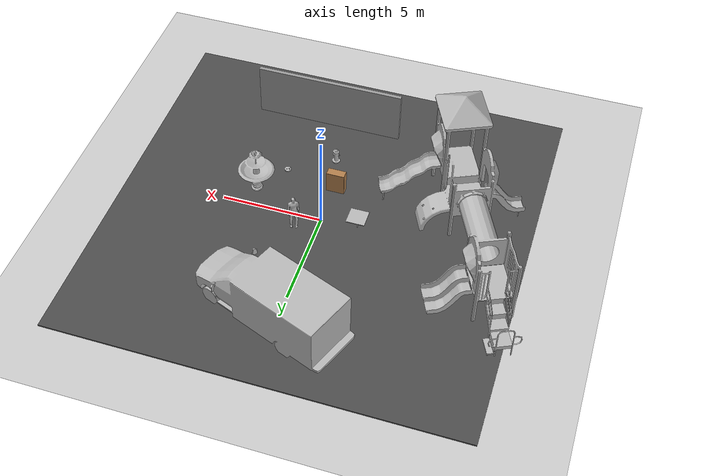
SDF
<sdf version="1.6">
 <world name="default">
  <model name="ground_plane">
   <static>1</static>
   <link name="link">
    <collision name="collision">
     <geometry><plane><normal>0 0 1</normal><size>100 100</size></plane></geometry>
     <surface>
      <contact><collide_bitmask>65535</collide_bitmask></contact>
      <friction><ode><mu>100</mu><mu2>50</mu2></ode></friction>
     </surface>
    </collision>
    <visual name="visual">
     <cast_shadows>0</cast_shadows>
     <geometry><plane><normal>0 0 1</normal><size>100 100</size></plane></geometry>
     <material>
      <script><uri>file://media/materials/scripts/gazebo.material</uri><name>Gazebo/Grey</name></script>
     </material>
    </visual>
   </link>
  </model>
  <light name="sun" type="directional">
   <pose>0 0 10 0 -0 0</pose>
   <diffuse>0.8 0.8 0.8 1</diffuse>
   <specular>0.2 0.2 0.2 1</specular>
   <attenuation>
    <range>1000</range>
    <constant>0.9</constant>
    <linear>0.01</linear>
    <quadratic>0.001</quadratic>
   </attenuation>
   <direction>-0.5 0.1 -0.9</direction>
  </light>
  <gravity>0 0 -9.8</gravity>
  <magnetic_field>6e-06 2.3e-05 -4.2e-05</magnetic_field>
  <atmosphere type="adiabatic"/>
  <physics name="default_physics" default="0" type="ode">
   <max_step_size>0.001</max_step_size>
   <real_time_factor>1</real_time_factor>
   <real_time_update_rate>1000</real_time_update_rate>
  </physics>
  <scene><ambient>0.4 0.4 0.4 1</ambient><background>0.7 0.7 0.7 1</background><shadows>1</shadows></scene>
  <audio><device>default</device></audio>
  <spherical_coordinates>
   <surface_model>EARTH_WGS84</surface_model>
   <latitude_deg>0</latitude_deg>
   <longitude_deg>0</longitude_deg>
   <elevation>0</elevation>
   <heading_deg>0</heading_deg>
  </spherical_coordinates>
  <model name="bookshelf">
   <static>1</static>
   <link name="link">
    <inertial><mass>1</mass></inertial>
    <collision name="back">
     <pose>0 0.005 0.6 0 -0 0</pose>
     <geometry><box><size>0.9 0.01 1.2</size></box></geometry>
    </collision>
    <visual name="visual1">
     <pose>0 0.005 0.6 0 -0 0</pose>
     <geometry><box><size>0.9 0.01 1.2</size></box></geometry>
     <material>
      <script><uri>file://media/materials/scripts/gazebo.material</uri><name>Gazebo/Wood</name></script>
     </material>
    </visual>
    <collision name="left_side">
     <pose>0.45 -0.195 0.6 0 -0 0</pose>
     <geometry><box><size>0.02 0.4 1.2</size></box></geometry>
    </collision>
    <visual name="visual2">
     <pose>0.45 -0.195 0.6 0 -0 0</pose>
     <geometry><box><size>0.02 0.4 1.2</size></box></geometry>
     <material>
      <script><uri>file://media/materials/scripts/gazebo.material</uri><name>Gazebo/Wood</name></script>
     </material>
    </visual>
    <collision name="right_side">
     <pose>-0.45 -0.195 0.6 0 -0 0</pose>
     <geometry><box><size>0.02 0.4 1.2</size></box></geometry>
    </collision>
    <visual name="visual3">
     <pose>-0.45 -0.195 0.6 0 -0 0</pose>
     <geometry><box><size>0.02 0.4 1.2</size></box></geometry>
     <material>
      <script><uri>file://media/materials/scripts/gazebo.material</uri><name>Gazebo/Wood</name></script>
     </material>
    </visual>
    <collision name="bottom">
     <pose>0 -0.195 0.03 0 -0 0</pose>
     <geometry><box><size>0.88 0.4 0.06</size></box></geometry>
    </collision>
    <visual name="visual4">
     <pose>0 -0.195 0.03 0 -0 0</pose>
     <geometry><box><size>0.88 0.4 0.06</size></box></geometry>
     <material>
      <script><uri>file://media/materials/scripts/gazebo.material</uri><name>Gazebo/Wood</name></script>
     </material>
    </visual>
    <collision name="top">
     <pose>0 -0.195 1.19 0 -0 0</pose>
     <geometry><box><size>0.88 0.4 0.02</size></box></geometry>
    </collision>
    <visual name="visual5">
     <pose>0 -0.195 1.19 0 -0 0</pose>
     <geometry><box><size>0.88 0.4 0.02</size></box></geometry>
     <material>
      <script><uri>file://media/materials/scripts/gazebo.material</uri><name>Gazebo/Wood</name></script>
     </material>
    </visual>
    <collision name="low_shelf">
     <pose>0 -0.195 0.43 0 -0 0</pose>
     <geometry><box><size>0.88 0.4 0.02</size></box></geometry>
    </collision>
    <visual name="visual6">
     <pose>0 -0.195 0.43 0 -0 0</pose>
     <geometry><box><size>0.88 0.4 0.02</size></box></geometry>
     <material>
      <script><uri>file://media/materials/scripts/gazebo.material</uri><name>Gazebo/Wood</name></script>
     </material>
    </visual>
    <collision name="high_shelf">
     <pose>0 -0.195 0.8 0 -0 0</pose>
     <geometry><box><size>0.88 0.4 0.02</size></box></geometry>
    </collision>
    <visual name="visual7">
     <pose>0 -0.195 0.8 0 -0 0</pose>
     <geometry><box><size>0.88 0.4 0.02</size></box></geometry>
     <material>
      <script><uri>file://media/materials/scripts/gazebo.material</uri><name>Gazebo/Wood</name></script>
     </material>
    </visual>
   </link>
   <pose>-0.08169 -1.9926 0 0 -0 0</pose>
  </model>
  <model name="cafe_table">
   <static>1</static>
   <link name="link">
    <collision name="surface">
     <pose>0 0 0.755 0 -0 0</pose>
     <geometry><box><size>0.913 0.913 0.04</size></box></geometry>
    </collision>
    <collision name="column">
     <pose>0 0 0.37 0 -0 0</pose>
     <geometry><box><size>0.042 0.042 0.74</size></box></geometry>
    </collision>
    <collision name="base">
     <pose>0 0 0.02 0 -0 0</pose>
     <geometry><box><size>0.56 0.56 0.04</size></box></geometry>
    </collision>
    <visual name="visual">
     <geometry><mesh><uri>model://cafe_table/meshes/cafe_table.dae</uri></mesh></geometry>
    </visual>
   </link>
   <pose>-1.80922 -0.085626 0 0 -0 0</pose>
  </model>
  <model name="create">
   <link name="base">
    <inertial>
     <pose>0.001453 -0.000453 0.029787 0 -0 0</pose>
     <inertia>
      <ixx>0.05864</ixx>
      <ixy>0.000124</ixy>
      <ixz>0.000615</ixz>
      <iyy>0.058786</iyy>
      <iyz>1.4e-05</iyz>
      <izz>1.53244</izz>
     </inertia>
     <mass>2.234</mass>
    </inertial>
    <collision name="base_collision">
     <pose>0 0 0.0478 0 -0 0</pose>
     <geometry><cylinder><radius>0.016495</radius><length>0.061163</length></cylinder></geometry>
    </collision>
    <visual name="base_visual">
     <pose>0 0 0.0478 0 -0 0</pose>
     <geometry><mesh><uri>model://create/meshes/create_body.dae</uri></mesh></geometry>
    </visual>
    <collision name="front_wheel_collision">
     <pose>0.13 0 0.017 -0 1.5707 1.5707</pose>
     <geometry><sphere><radius>0.018</radius></sphere></geometry>
     <surface>
      <friction><ode><mu>0</mu><mu2>0</mu2><fdir1>0 0 0</fdir1><slip1>0</slip1><slip2>0</slip2></ode></friction>
     </surface>
    </collision>
    <visual name="front_wheel_visual">
     <pose>0.13 0 0.017 -0 1.5707 1.5707</pose>
     <geometry><sphere><radius>0.009</radius></sphere></geometry>
    </visual>
    <collision name="rear_wheel_collision">
     <pose>-0.13 0 0.017 -0 1.5707 1.5707</pose>
     <geometry><sphere><radius>0.015</radius></sphere></geometry>
     <surface>
      <friction><ode><mu>0</mu><mu2>0</mu2><fdir1>0 0 0</fdir1><slip1>0</slip1><slip2>0</slip2></ode></friction>
     </surface>
    </collision>
    <visual name="rear_wheel_visual">
     <pose>-0.13 0 0.017 -0 1.5707 1.5707</pose>
     <geometry><sphere><radius>0.0075</radius></sphere></geometry>
    </visual>
    <sensor name="left_cliff_sensor" type="ray">
     <pose>0.07 0.14 0.027 0 1.57079 0</pose>
     <ray>
      <scan>
       <horizontal>
        <samples>1</samples>
        <resolution>1</resolution>
        <min_angle>0</min_angle>
        <max_angle>0</max_angle>
       </horizontal>
       <vertical><samples>1</samples><min_angle>0</min_angle><max_angle>0</max_angle></vertical>
      </scan>
      <range><min>0.01</min><max>0.04</max><resolution>0.1</resolution></range>
     </ray>
    </sensor>
    <sensor name="leftfront_cliff_sensor" type="ray">
     <pose>0.15 0.04 0.027 0 1.57079 0</pose>
     <ray>
      <scan>
       <horizontal>
        <samples>1</samples>
        <resolution>1</resolution>
        <min_angle>0</min_angle>
        <max_angle>0</max_angle>
       </horizontal>
       <vertical><samples>1</samples><min_angle>0</min_angle><max_angle>0</max_angle></vertical>
      </scan>
      <range><min>0.01</min><max>0.04</max><resolution>0.1</resolution></range>
     </ray>
    </sensor>
    <sensor name="right_cliff_sensor" type="ray">
     <pose>0.07 -0.14 0.027 0 1.57079 0</pose>
     <ray>
      <scan>
       <horizontal>
        <samples>1</samples>
        <resolution>1</resolution>
        <min_angle>0</min_angle>
        <max_angle>0</max_angle>
       </horizontal>
       <vertical><samples>1</samples><min_angle>0</min_angle><max_angle>0</max_angle></vertical>
      </scan>
      <range><min>0.01</min><max>0.04</max><resolution>0.1</resolution></range>
     </ray>
    </sensor>
    <sensor name="rightfront_cliff_sensor" type="ray">
     <pose>0.15 -0.04 0.027 0 1.57079 0</pose>
     <ray>
      <scan>
       <horizontal>
        <samples>1</samples>
        <resolution>1</resolution>
        <min_angle>0</min_angle>
        <max_angle>0</max_angle>
       </horizontal>
       <vertical><samples>1</samples><min_angle>0</min_angle><max_angle>0</max_angle></vertical>
      </scan>
      <range><min>0.01</min><max>0.04</max><resolution>0.1</resolution></range>
     </ray>
    </sensor>
    <sensor name="wall_sensor" type="ray">
     <pose>0.09 -0.12 0.059 0 0 -1</pose>
     <ray>
      <scan>
       <horizontal>
        <samples>1</samples>
        <resolution>1</resolution>
        <min_angle>0</min_angle>
        <max_angle>0</max_angle>
       </horizontal>
       <vertical><samples>1</samples><min_angle>0</min_angle><max_angle>0</max_angle></vertical>
      </scan>
      <range><min>0.016</min><max>0.04</max><resolution>0.1</resolution></range>
     </ray>
    </sensor>
   </link>
   <link name="left_wheel">
    <pose>0 0.13 0.032 0 -0 0</pose>
    <inertial>
     <inertia><ixx>0.001</ixx><ixy>0</ixy><ixz>0</ixz><iyy>0.001</iyy><iyz>0</iyz><izz>0.001</izz></inertia>
     <mass>0.01</mass>
    </inertial>
    <collision name="collision">
     <pose>0 0 0 -0 1.5707 1.5707</pose>
     <geometry><cylinder><radius>0.033</radius><length>0.023</length></cylinder></geometry>
     <surface>
      <friction><ode><mu>10</mu><mu2>10</mu2><fdir1>0 0 0</fdir1><slip1>0</slip1><slip2>0</slip2></ode></friction>
     </surface>
    </collision>
    <visual name="visual">
     <pose>0 0 0 -0 1.5707 1.5707</pose>
     <geometry><cylinder><radius>0.033</radius><length>0.023</length></cylinder></geometry>
    </visual>
   </link>
   <link name="right_wheel">
    <pose>0 -0.13 0.032 0 -0 0</pose>
    <inertial>
     <inertia><ixx>0.001</ixx><ixy>0</ixy><ixz>0</ixz><iyy>0.001</iyy><iyz>0</iyz><izz>0.001</izz></inertia>
     <mass>0.01</mass>
    </inertial>
    <collision name="collision">
     <pose>0 0 0 -0 1.5707 1.5707</pose>
     <geometry><cylinder><radius>0.033</radius><length>0.023</length></cylinder></geometry>
     <surface>
      <friction><ode><mu>10</mu><mu2>10</mu2><fdir1>0 0 0</fdir1><slip1>0</slip1><slip2>0</slip2></ode></friction>
     </surface>
    </collision>
    <visual name="visual">
     <pose>0 0 0 -0 1.5707 1.5707</pose>
     <geometry><cylinder><radius>0.033</radius><length>0.023</length></cylinder></geometry>
    </visual>
   </link>
   <joint name="left_wheel" type="revolute">
    <parent>base</parent>
    <child>left_wheel</child>
    <axis>
     <xyz>0 1 0</xyz>
     <use_parent_model_frame>1</use_parent_model_frame>
     <limit><lower>-1e+16</lower><upper>1e+16</upper></limit>
     <dynamics><spring_reference>0</spring_reference><spring_stiffness>0</spring_stiffness></dynamics>
    </axis>
   </joint>
   <joint name="right_wheel" type="revolute">
    <parent>base</parent>
    <child>right_wheel</child>
    <axis>
     <xyz>0 1 0</xyz>
     <use_parent_model_frame>1</use_parent_model_frame>
     <limit><lower>-1e+16</lower><upper>1e+16</upper></limit>
     <dynamics><spring_reference>0</spring_reference><spring_stiffness>0</spring_stiffness></dynamics>
    </axis>
   </joint>
   <pose>2.62838 -2.73632 0.050937 8.9e-05 -0.001057 -1.13753</pose>
  </model>
  <model name="person_standing">
   <link name="link">
    <inertial>
     <pose>0 -0.1 0.95 0 -0 0</pose>
     <mass>80</mass>
     <inertia><ixx>24.88</ixx><ixy>0</ixy><ixz>0</ixz><iyy>25.73</iyy><iyz>0</iyz><izz>2.48</izz></inertia>
    </inertial>
    <collision name="bottom">
     <pose>0 -0.1 0.01 0 -0 0</pose>
     <geometry><box><size>0.5 0.35 0.02</size></box></geometry>
    </collision>
    <collision name="person">
     <pose>0 0 0.02 0.04 -0 0</pose>
     <geometry><mesh><uri>model://person_standing/meshes/standing.dae</uri></mesh></geometry>
    </collision>
    <visual name="visual">
     <pose>0 0 0.02 0.04 -0 0</pose>
     <geometry><mesh><uri>model://person_standing/meshes/standing.dae</uri></mesh></geometry>
    </visual>
   </link>
   <pose>1.14183 0.70224 0.05 0 1e-06 -2.79324</pose>
  </model>
  <model name="playground">
   <static>1</static>
   <link name="link">
    <collision name="collision">
     <geometry><mesh><uri>model://playground/meshes/playground.dae</uri></mesh></geometry>
    </collision>
    <visual name="visual">
     <geometry><mesh><uri>model://playground/meshes/playground.dae</uri></mesh></geometry>
    </visual>
   </link>
   <pose>-7.1678 0.169154 0 0 -0 2.01186</pose>
  </model>
  <model name="ambulance">
   <static>1</static>
   <link name="link">
    <collision name="collision">
     <geometry>
      <mesh><scale>0.0254 0.0254 0.0254</scale><uri>model://ambulance/meshes/ambulance.obj</uri></mesh>
     </geometry>
    </collision>
    <visual name="visual">
     <geometry>
      <mesh><scale>0.0254 0.0254 0.0254</scale><uri>model://ambulance/meshes/ambulance.obj</uri></mesh>
     </geometry>
    </visual>
   </link>
   <pose>0.173323 6.34909 0 0 -0 1.19362</pose>
  </model>
  <model name="fountain">
   <static>1</static>
   <link name="link">
    <collision name="collision">
     <geometry><mesh><uri>model://fountain/meshes/fountain.dae</uri></mesh></geometry>
    </collision>
    <visual name="visual">
     <geometry><mesh><uri>model://fountain/meshes/fountain.dae</uri></mesh></geometry>
    </visual>
   </link>
   <pose>3.68494 -1.12932 0 0 -0 0</pose>
  </model>
  <model name="fire_hydrant">
   <static>1</static>
   <link name="link">
    <collision name="collision">
     <geometry><mesh><uri>model://fire_hydrant/meshes/fire_hydrant.dae</uri></mesh></geometry>
    </collision>
    <visual name="visual">
     <geometry><mesh><uri>model://fire_hydrant/meshes/fire_hydrant.dae</uri></mesh></geometry>
    </visual>
   </link>
   <pose>0.502583 -4.0422 0 0 -0 0</pose>
  </model>
  <model name="asphalt_plane">
   <static>1</static>
   <link name="link">
    <collision name="collision"><geometry><box><size>20 20 0.1</size></box></geometry></collision>
    <visual name="visual">
     <cast_shadows>0</cast_shadows>
     <geometry><box><size>20 20 0.1</size></box></geometry>
     <material>
      <script>
       <uri>model://asphalt_plane/materials/scripts</uri>
       <uri>model://asphalt_plane/materials/textures</uri>
       <name>vrc/asphalt</name>
      </script>
     </material>
    </visual>
   </link>
   <pose>0.024091 -0.032501 0 0 -0 0</pose>
  </model>
  <model name="grey_wall">
   <static>1</static>
   <link name="link">
    <pose>0 0 1.4 0 -0 0</pose>
    <collision name="collision"><geometry><box><size>7.5 0.2 2.8</size></box></geometry></collision>
    <visual name="visual">
     <cast_shadows>0</cast_shadows>
     <geometry><box><size>7.5 0.2 2.8</size></box></geometry>
     <material>
      <script>
       <uri>model://grey_wall/materials/scripts</uri>
       <uri>model://grey_wall/materials/textures</uri>
       <name>vrc/grey_wall</name>
      </script>
     </material>
    </visual>
   </link>
   <pose>1.70859 -6.70476 0 0 -0 0</pose>
  </model>
 </world>
</sdf>
